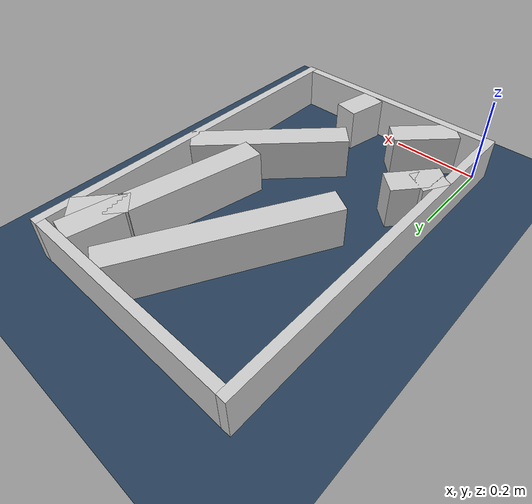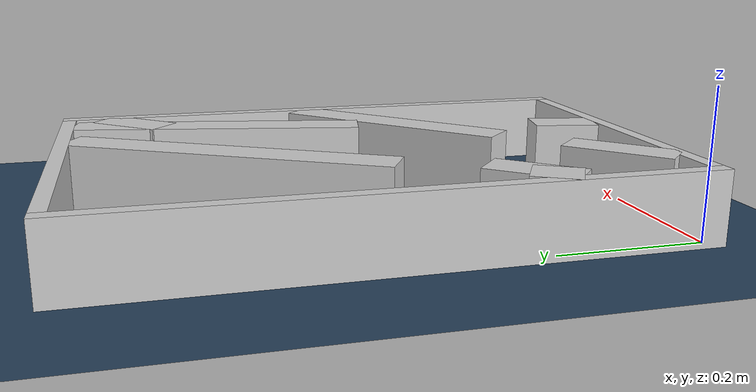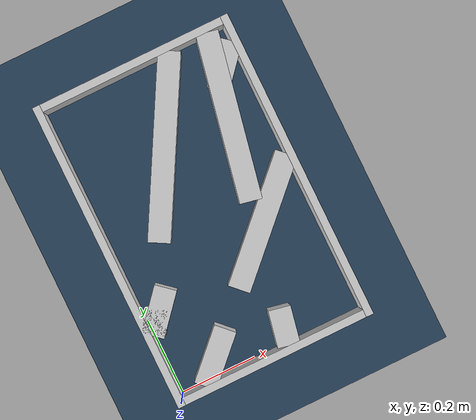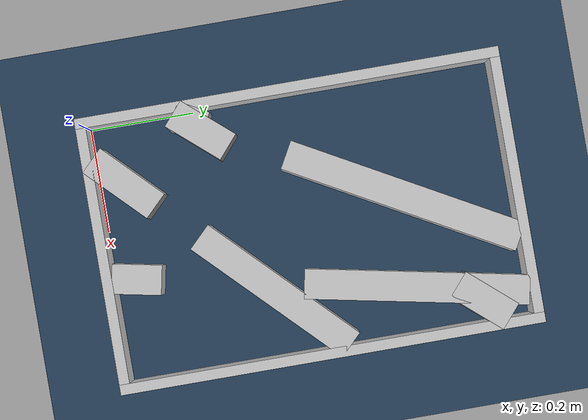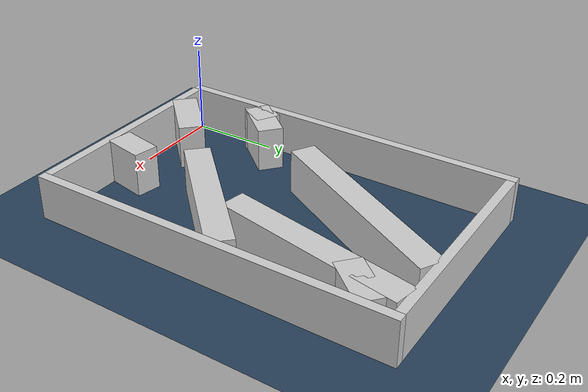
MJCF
<?xml version="1.0" ?>
<mujoco model="generated_real_template">
  <compiler angle="degree"/>
  <option timestep="0.002" integrator="implicitfast" iterations="100" cone="elliptic"/>
  <default>
    <geom density="1"/>
  </default>
  <asset>
    <texture builtin="gradient" height="3072" rgb1="0.3 0.5 0.7" rgb2="0 0 0" type="skybox" width="512"/>
    <texture builtin="checker" height="300" mark="edge" markrgb="0.8 0.8 0.8" name="groundplane" rgb1="0.2 0.3 0.4" rgb2="0.1 0.2 0.3" type="2d" width="300"/>
    <material name="groundplane" reflectance="0.2" texrepeat="5 5" texture="groundplane" texuniform="true"/>
  </asset>
  <worldbody>
    <light dir="0 0 -1" directional="true" pos="0 0 1.5"/>
    <geom name="floor" type="plane" condim="4" friction="0.5 0.005 0.001" material="groundplane" size="0 0 0.05"/>
    <body name="walls">
      <geom name="wall_boundary_left" type="box" condim="4" friction="1.0 0.005 0.0001" rgba="0.8 0.8 0.8 1" pos="-0.010000 0.387500 0.050000" euler="0 0 0.000000" size="0.010000 0.407500 0.050000"/>
      <geom name="wall_boundary_right" type="box" condim="4" friction="1.0 0.005 0.0001" rgba="0.8 0.8 0.8 1" pos="0.500000 0.387500 0.050000" euler="0 0 0.000000" size="0.010000 0.407500 0.050000"/>
      <geom name="wall_boundary_bottom" type="box" condim="4" friction="1.0 0.005 0.0001" rgba="0.8 0.8 0.8 1" pos="0.245000 -0.010000 0.050000" euler="0 0 0.000000" size="0.245000 0.010000 0.050000"/>
      <geom name="wall_boundary_top" type="box" condim="4" friction="1.0 0.005 0.0001" rgba="0.8 0.8 0.8 1" pos="0.245000 0.785000 0.050000" euler="0 0 0.000000" size="0.245000 0.010000 0.050000"/>
      <geom name="wall_inner_1_1" type="box" condim="4" friction="1.0 0.005 0.0001" rgba="0.8 0.8 0.8 1" pos="0.228795 0.569659 0.050000" euler="0 0 -119.058102" size="0.234909 0.028500 0.050000"/>
      <geom name="wall_inner_1_2" type="box" condim="4" friction="1.0 0.005 0.0001" rgba="0.8 0.8 0.8 1" pos="0.020349 0.194511 0.050000" euler="0 0 -119.058102" size="0.031779 0.028500 0.050000"/>
      <geom name="wall_inner_2_1" type="box" condim="4" friction="1.0 0.005 0.0001" rgba="0.8 0.8 0.8 1" pos="0.402963 0.566017 0.050000" euler="0 0 -101.298946" size="0.213114 0.028500 0.050000"/>
      <geom name="wall_inner_2_2" type="box" condim="4" friction="1.0 0.005 0.0001" rgba="0.8 0.8 0.8 1" pos="0.299136 0.046365 0.050000" euler="0 0 -101.298946" size="0.047282 0.028500 0.050000"/>
      <geom name="wall_inner_3_1" type="box" condim="4" friction="1.0 0.005 0.0001" rgba="0.8 0.8 0.8 1" pos="0.041483 0.212950 0.050000" euler="0 0 49.262284" size="0.061122 0.028500 0.050000"/>
      <geom name="wall_inner_3_2" type="box" condim="4" friction="1.0 0.005 0.0001" rgba="0.8 0.8 0.8 1" pos="0.450309 0.687621 0.050000" euler="0 0 49.262284" size="0.058375 0.028500 0.050000"/>
      <geom name="wall_inner_4_1" type="box" condim="4" friction="1.0 0.005 0.0001" rgba="0.8 0.8 0.8 1" pos="0.365055 0.300632 0.050000" euler="0 0 -135.173853" size="0.176035 0.028500 0.050000"/>
      <geom name="wall_inner_4_2" type="box" condim="4" friction="1.0 0.005 0.0001" rgba="0.8 0.8 0.8 1" pos="0.115694 0.052780 0.050000" euler="0 0 -135.173853" size="0.074565 0.028500 0.050000"/>
    </body>
  </worldbody>
</mujoco>
